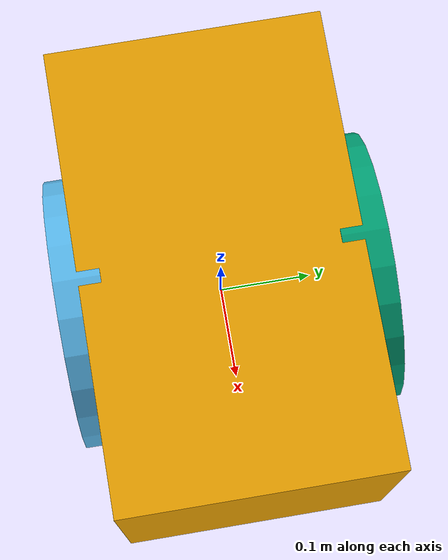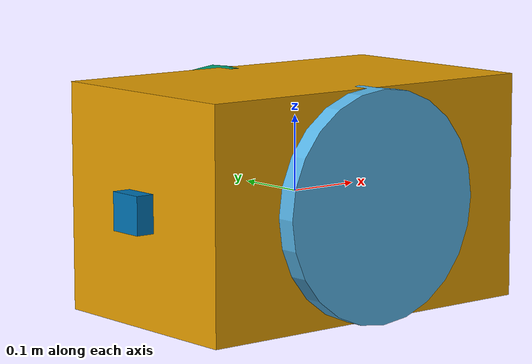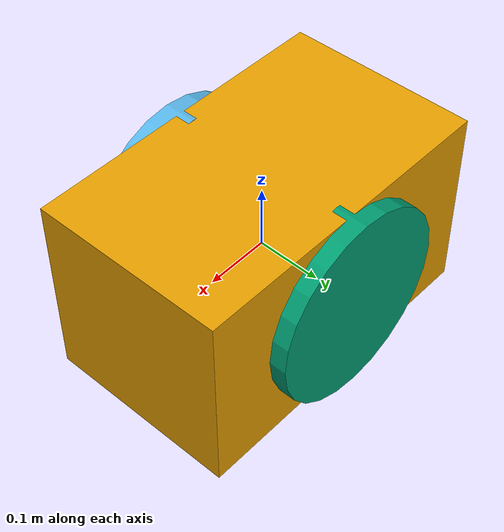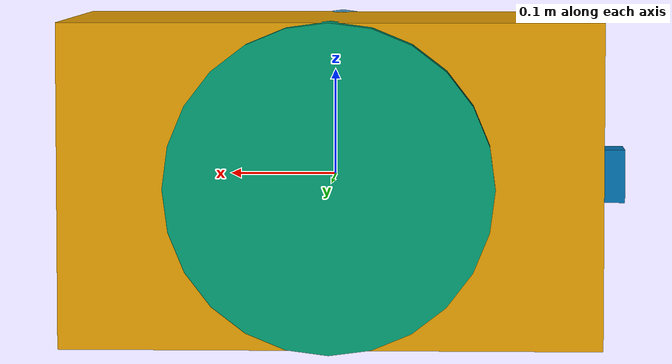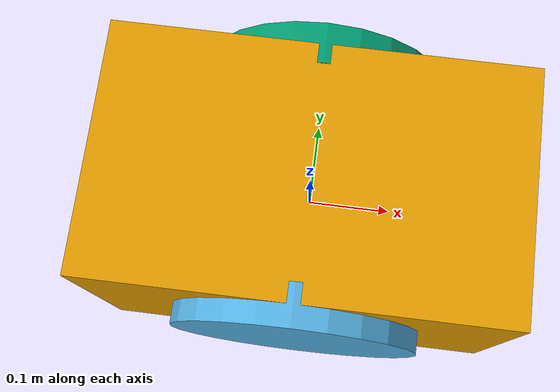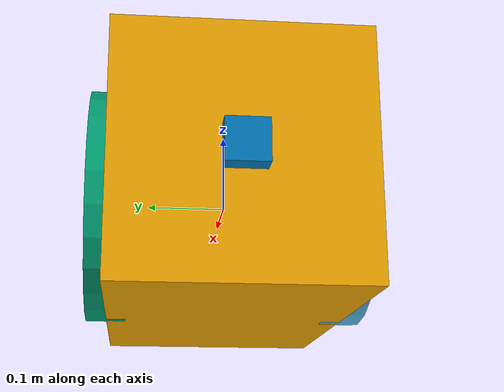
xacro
<?xml version="1.0"?>
<robot name="simple_bot" xmlns:xacro="http://www.ros.org/wiki/xacro">

  <link name="base_link">
    <visual>
      <geometry>
        <box size="0.5 0.3 0.3"/>
      </geometry>
    </visual>
    <collision>
      <geometry>
        <box size="0.5 0.3 0.3"/>
      </geometry>
    </collision>
    <inertial>
      <mass value="5.0"/>
      <inertia ixx="0.01" ixy="0.0" ixz="0.0" iyy="0.02" iyz="0.0" izz="0.03"/>
    </inertial>
  </link>

  <joint name="l_whl_joint" type="continuous">
    <parent link="base_link"/>
    <child link="l_whl"/>
    <origin xyz="0 -0.151 0" rpy="1.5708 0 0"/>
    <axis xyz="0 0 1"/>
  </joint>

  <link name="l_whl">
    <visual>
      <geometry>
        <cylinder radius="0.151" length="0.05"/>
      </geometry>
    </visual>
    <collision>
      <geometry>
        <cylinder radius="0.151" length="0.05"/>
      </geometry>
    </collision>
    <inertial>
      <mass value="1.0"/>
      <inertia ixx="0.01" ixy="0.0" ixz="0.0" iyy="0.01" iyz="0.0" izz="0.01"/>
    </inertial>
  </link>

  <link name="r_whl">
    <visual>
      <geometry>
        <cylinder radius="0.151" length="0.05"/>
      </geometry>
    </visual>
    <collision>
      <geometry>
        <cylinder radius="0.151" length="0.05"/>
      </geometry>
    </collision>
    <inertial>
      <mass value="1.0"/>
      <inertia ixx="0.01" ixy="0.0" ixz="0.0" iyy="0.01" iyz="0.0" izz="0.01"/>
    </inertial>
  </link>

  <joint name="r_whl_joint" type="continuous">
    <parent link="base_link"/>
    <child link="r_whl"/>
    <origin xyz="0 0.151 0" rpy="1.5708 0 0"/>
    <axis xyz="0 0 1"/>
  </joint>

  <link name="lidar_link">
  </link>

  <joint name="lidar_joint" type="fixed">
    <origin xyz="-0.26 0 -0.1" rpy="0 0 3.1416"/>
    <parent link="base_link"/>
    <child link="lidar_link"/>
  </joint>

  <gazebo reference="lidar_link">
    <sensor type="ray" name="lidar_sensor">
      <pose>0 0 0 0 0 0</pose>
      <visualize>true</visualize>
      <update_rate>60</update_rate>
      <ray>
        <scan>
          <horizontal>
            <samples>50</samples>
            <resolution>1</resolution>
            <min_angle>-1.570796</min_angle>
            <max_angle>1.570796</max_angle>
          </horizontal>
        </scan>
        <range>
          <min>0.1</min>
          <max>5.0</max>
          <resolution>0.005</resolution>
        </range>
        <noise>
          <type>gaussian</type>
          <mean>0.0</mean>
          <stddev>0.005</stddev>
        </noise>
      </ray>
      <plugin name="gazebo_ros_laser_controller" filename="libgazebo_ros_laser.so">
        <topicName>base_scan</topicName>
        <frameName>lidar_link</frameName>
      </plugin>
    </sensor>
  </gazebo>

  <gazebo>
    <plugin name="differential_drive_controller" filename="libgazebo_ros_diff_drive.so">
      <legacyMode>true</legacyMode>
      <updateRate>100.0</updateRate>
      <leftJoint>l_whl_joint</leftJoint>
      <rightJoint>r_whl_joint</rightJoint>
      <wheelSeparation>0.3</wheelSeparation>
      <wheelDiameter>0.3</wheelDiameter>
      <torque>20.0</torque>
      <commandTopic>cmd_vel</commandTopic>
      <odometryFrame>odom</odometryFrame>
      <odometryTopic>odom</odometryTopic>
      <robotBaseFrame>base_link</robotBaseFrame>
    </plugin>
  </gazebo>

  <link name="camera_link">
    <visual>
      <geometry>
        <box size="0.05 0.05 0.05"/>
      </geometry>
    </visual>
    <collision>
      <geometry>
        <box size="0.05 0.05 0.05"/>
      </geometry>
    </collision>
    <inertial>
      <mass value="0.1"/>
      <inertia ixx="0.0001" ixy="0" ixz="0" iyy="0.0001" iyz="0" izz="0.0001"/>
    </inertial>
  </link>

  <joint name="camera_joint" type="fixed">
    <origin xyz="-0.25 0 0" rpy="0 0 3.1416"/>
    <parent link="base_link"/>
    <child link="camera_link"/>
  </joint>

  <gazebo reference="camera_link">
    <sensor type="camera" name="front_camera">
      <update_rate>30.0</update_rate>
      <camera name="head">
        <horizontal_fov>1.3962634</horizontal_fov>
        <image>
          <width>32</width>
          <height>32</height>
          <format>R8G8B8</format>
        </image>
        <clip>
          <near>0.1</near>
          <far>100</far>
        </clip>
      </camera>
      <plugin name="camera_controller" filename="libgazebo_ros_camera.so">
        <alwaysOn>true</alwaysOn>
        <updateRate>0</updateRate>
        <cameraName>camera</cameraName>
        <imageTopicName>/camera/image_raw</imageTopicName>
        <cameraInfoTopicName>/camera/camera_info</cameraInfoTopicName>
        <frameName>camera_link</frameName>
      </plugin>
    </sensor>
  </gazebo>

  <gazebo>
    <plugin name="gazebo_ros_control" filename="libgazebo_ros_control.so">
      <robotNamespace>/</robotNamespace>
    </plugin>
  </gazebo>

  <transmission name="left_wheel_trans">
    <type>transmission_interface/SimpleTransmission</type>
    <joint name="l_whl_joint">
      <hardwareInterface>hardware_interface/EffortJointInterface</hardwareInterface>
    </joint>
    <actuator name="l_whl_motor">
      <hardwareInterface>hardware_interface/EffortJointInterface</hardwareInterface>
      <mechanicalReduction>1</mechanicalReduction>
    </actuator>
  </transmission>

  <transmission name="right_wheel_trans">
    <type>transmission_interface/SimpleTransmission</type>
    <joint name="r_whl_joint">
      <hardwareInterface>hardware_interface/EffortJointInterface</hardwareInterface>
    </joint>
    <actuator name="r_whl_motor">
      <hardwareInterface>hardware_interface/EffortJointInterface</hardwareInterface>
      <mechanicalReduction>1</mechanicalReduction>
    </actuator>
  </transmission>

</robot>
